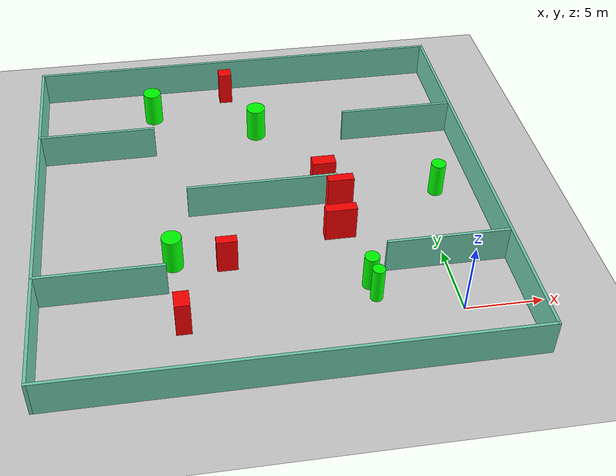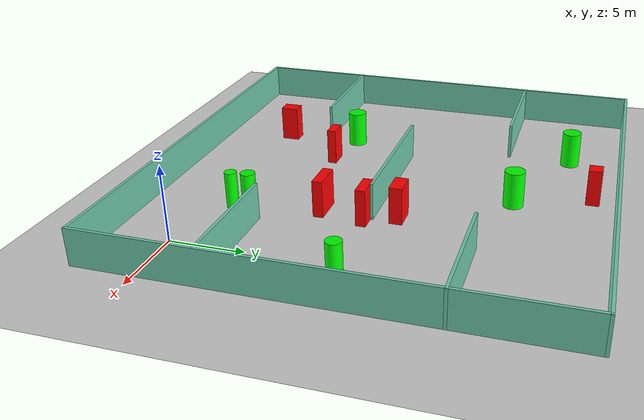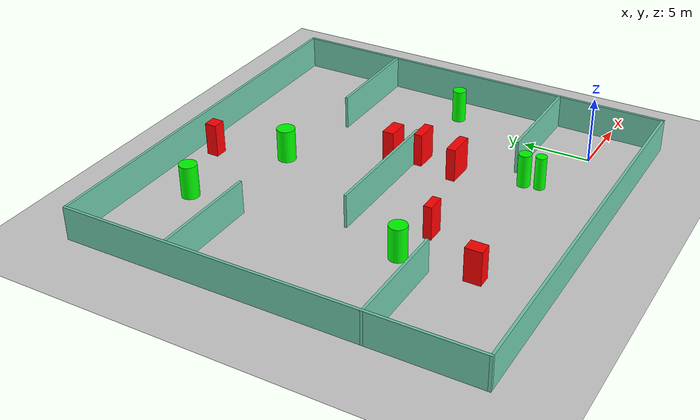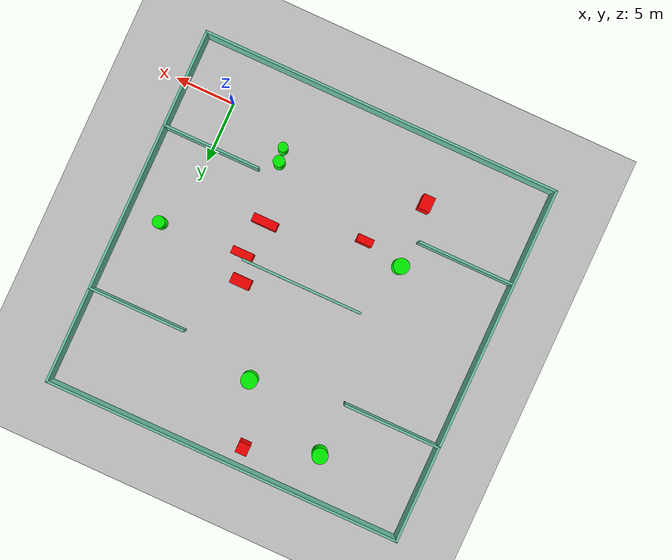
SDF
<sdf version="1.7">
 <world name="default">
  <light name="sun" type="directional">
   <pose>0 0 10 0 -0 0</pose>
   <diffuse>0.8 0.8 0.8 1</diffuse>
   <specular>0.2 0.2 0.2 1</specular>
   <attenuation>
    <range>1000</range>
    <constant>0.9</constant>
    <linear>0.01</linear>
    <quadratic>0.001</quadratic>
   </attenuation>
   <direction>-0.5 0.1 -0.9</direction>
   <spot><inner_angle>0</inner_angle><outer_angle>0</outer_angle><falloff>0</falloff></spot>
  </light>
  <model name="ground_plane">
   <static>1</static>
   <link name="link">
    <collision name="collision">
     <geometry><plane><normal>0 0 1</normal><size>100 100</size></plane></geometry>
     <surface>
      <contact><collide_bitmask>65535</collide_bitmask></contact>
      <friction><ode><mu>100</mu><mu2>50</mu2></ode></friction>
     </surface>
    </collision>
    <visual name="visual">
     <cast_shadows>0</cast_shadows>
     <geometry><plane><normal>0 0 1</normal><size>100 100</size></plane></geometry>
     <material>
      <script><uri>file://media/materials/scripts/gazebo.material</uri><name>Gazebo/Grey</name></script>
     </material>
    </visual>
   </link>
  </model>
  <gravity>0 0 -9.8</gravity>
  <magnetic_field>6e-06 2.3e-05 -4.2e-05</magnetic_field>
  <atmosphere type="adiabatic"/>
  <physics type="ode">
   <max_step_size>0.001</max_step_size>
   <real_time_factor>1</real_time_factor>
   <real_time_update_rate>1000</real_time_update_rate>
  </physics>
  <scene><ambient>0.4 0.4 0.4 1</ambient><background>0.7 0.7 0.7 1</background><shadows>1</shadows></scene>
  <spherical_coordinates>
   <surface_model>EARTH_WGS84</surface_model>
   <latitude_deg>0</latitude_deg>
   <longitude_deg>0</longitude_deg>
   <elevation>0</elevation>
   <heading_deg>0</heading_deg>
  </spherical_coordinates>
  <model name="my_base_walls">
   <link name="Wall_10">
    <collision name="Wall_10_Collision">
     <geometry><box><size>8.2 0.2 2.5</size></box></geometry>
     <pose>0 0 1.25 0 -0 0</pose>
    </collision>
    <visual name="Wall_10_Visual">
     <pose>0 0 1.25 0 -0 0</pose>
     <geometry><box><size>8.2 0.2 2.5</size></box></geometry>
     <material>
      <script><uri>file://media/materials/scripts/gazebo.material</uri><name>Gazebo/Grey</name></script>
      <ambient>0.435294 0.796078 0.67451 1</ambient>
     </material>
     <meta><layer>0</layer></meta>
    </visual>
    <pose>-11 -7 0 0 -0 0</pose>
   </link>
   <link name="Wall_12">
    <collision name="Wall_12_Collision">
     <geometry><box><size>8.2 0.2 2.5</size></box></geometry>
     <pose>0 0 1.25 0 -0 0</pose>
    </collision>
    <visual name="Wall_12_Visual">
     <pose>0 0 1.25 0 -0 0</pose>
     <geometry><box><size>8.2 0.2 2.5</size></box></geometry>
     <material>
      <script><uri>file://media/materials/scripts/gazebo.material</uri><name>Gazebo/Grey</name></script>
      <ambient>0.435294 0.796078 0.67451 1</ambient>
     </material>
     <meta><layer>0</layer></meta>
    </visual>
    <pose>-11 7 0 0 -0 0</pose>
   </link>
   <link name="Wall_14">
    <collision name="Wall_14_Collision">
     <geometry><box><size>8.2 0.2 2.5</size></box></geometry>
     <pose>0 0 1.25 0 -0 0</pose>
    </collision>
    <visual name="Wall_14_Visual">
     <pose>0 0 1.25 0 -0 0</pose>
     <geometry><box><size>8.2 0.2 2.5</size></box></geometry>
     <material>
      <script><uri>file://media/materials/scripts/gazebo.material</uri><name>Gazebo/Grey</name></script>
      <ambient>0.435294 0.796078 0.67451 1</ambient>
     </material>
     <meta><layer>0</layer></meta>
    </visual>
    <pose>11 7 0 0 -0 3.14159</pose>
   </link>
   <link name="Wall_16">
    <collision name="Wall_16_Collision">
     <geometry><box><size>10.2 0.2 2.5</size></box></geometry>
     <pose>0 0 1.25 0 -0 0</pose>
    </collision>
    <visual name="Wall_16_Visual">
     <pose>0 0 1.25 0 -0 0</pose>
     <geometry><box><size>10.2 0.2 2.5</size></box></geometry>
     <material>
      <script><uri>file://media/materials/scripts/gazebo.material</uri><name>Gazebo/Grey</name></script>
      <ambient>0.435294 0.796078 0.67451 1</ambient>
     </material>
     <meta><layer>0</layer></meta>
    </visual>
    <pose>0 0 0 0 -0 3.14159</pose>
   </link>
   <link name="Wall_2">
    <collision name="Wall_2_Collision">
     <geometry><box><size>30.2 0.2 2.5</size></box></geometry>
     <pose>0 0 1.25 0 -0 0</pose>
    </collision>
    <visual name="Wall_2_Visual">
     <pose>0 0 1.25 0 -0 0</pose>
     <geometry><box><size>30.2 0.2 2.5</size></box></geometry>
     <material>
      <script><uri>file://media/materials/scripts/gazebo.material</uri><name>Gazebo/Grey</name></script>
      <ambient>0.435294 0.796078 0.67451 1</ambient>
     </material>
     <meta><layer>0</layer></meta>
    </visual>
    <pose>0 -15 0 0 -0 3.14159</pose>
   </link>
   <link name="Wall_3">
    <collision name="Wall_3_Collision">
     <geometry><box><size>30.2 0.2 2.5</size></box></geometry>
     <pose>0 0 1.25 0 -0 0</pose>
    </collision>
    <visual name="Wall_3_Visual">
     <pose>0 0 1.25 0 -0 0</pose>
     <geometry><box><size>30.2 0.2 2.5</size></box></geometry>
     <material>
      <script><uri>file://media/materials/scripts/gazebo.material</uri><name>Gazebo/Grey</name></script>
      <ambient>0.435294 0.796078 0.67451 1</ambient>
     </material>
     <meta><layer>0</layer></meta>
    </visual>
    <pose>-15 0 0 0 -0 1.5708</pose>
   </link>
   <link name="Wall_4">
    <collision name="Wall_4_Collision">
     <geometry><box><size>30.2 0.2 2.5</size></box></geometry>
     <pose>0 0 1.25 0 -0 0</pose>
    </collision>
    <visual name="Wall_4_Visual">
     <pose>0 0 1.25 0 -0 0</pose>
     <geometry><box><size>30.2 0.2 2.5</size></box></geometry>
     <material>
      <script><uri>file://media/materials/scripts/gazebo.material</uri><name>Gazebo/Grey</name></script>
      <ambient>0.435294 0.796078 0.67451 1</ambient>
     </material>
     <meta><layer>0</layer></meta>
    </visual>
    <pose>0 15 0 0 -0 0</pose>
   </link>
   <link name="Wall_6">
    <collision name="Wall_6_Collision">
     <geometry><box><size>30.2 0.2 2.5</size></box></geometry>
     <pose>0 0 1.25 0 -0 0</pose>
    </collision>
    <visual name="Wall_6_Visual">
     <pose>0 0 1.25 0 -0 0</pose>
     <geometry><box><size>30.2 0.2 2.5</size></box></geometry>
     <material>
      <script><uri>file://media/materials/scripts/gazebo.material</uri><name>Gazebo/Grey</name></script>
      <ambient>0.435294 0.796078 0.67451 1</ambient>
     </material>
     <meta><layer>0</layer></meta>
    </visual>
    <pose>15 0 0 0 -0 1.5708</pose>
   </link>
   <link name="Wall_8">
    <collision name="Wall_8_Collision">
     <geometry><box><size>8.2 0.2 2.5</size></box></geometry>
     <pose>0 0 1.25 0 -0 0</pose>
    </collision>
    <visual name="Wall_8_Visual">
     <pose>0 0 1.25 0 -0 0</pose>
     <geometry><box><size>8.2 0.2 2.5</size></box></geometry>
     <material>
      <script><uri>file://media/materials/scripts/gazebo.material</uri><name>Gazebo/Grey</name></script>
      <ambient>0.435294 0.796078 0.67451 1</ambient>
     </material>
     <meta><layer>0</layer></meta>
    </visual>
    <pose>11 -7 0 0 -0 3.14159</pose>
   </link>
   <static>1</static>
   <pose>-11 11 0 0 -0 0</pose>
  </model>
  <model name="cylinder1">
   <static>1</static>
   <link name="link">
    <inertial>
     <mass>1</mass>
     <inertia><ixx>0.5</ixx><ixy>0</ixy><ixz>0</ixz><iyy>0.5</iyy><iyz>0</iyz><izz>1</izz></inertia>
    </inertial>
    <collision name="collision">
     <geometry><cylinder><radius>0.5062202185867763</radius><length>2.5</length></cylinder></geometry>
    </collision>
    <visual name="visual">
     <geometry><cylinder><radius>0.5062202185867763</radius><length>2.5</length></cylinder></geometry>
     <material>
      <ambient>0 1 0 1</ambient>
      <diffuse>0 1 0 1</diffuse>
      <specular>0.1 0.1 0.1 1</specular>
      <emissive>0 0 0 0</emissive>
     </material>
    </visual>
   </link>
   <pose>1.23482836327387 11.069621319199516 1.25 0 0 0</pose>
  </model>
  <model name="cylinder2">
   <static>1</static>
   <link name="link">
    <inertial>
     <mass>1</mass>
     <inertia><ixx>0.5</ixx><ixy>0</ixy><ixz>0</ixz><iyy>0.5</iyy><iyz>0</iyz><izz>1</izz></inertia>
    </inertial>
    <collision name="collision">
     <geometry><cylinder><radius>0.47885330656242897</radius><length>2.5</length></cylinder></geometry>
    </collision>
    <visual name="visual">
     <geometry><cylinder><radius>0.47885330656242897</radius><length>2.5</length></cylinder></geometry>
     <material>
      <ambient>0 1 0 1</ambient>
      <diffuse>0 1 0 1</diffuse>
      <specular>0.1 0.1 0.1 1</specular>
      <emissive>0 0 0 0</emissive>
     </material>
    </visual>
   </link>
   <pose>-5.331397697729777 2.8512396206025903 1.25 0 0 0</pose>
  </model>
  <model name="cylinder3">
   <static>1</static>
   <link name="link">
    <inertial>
     <mass>1</mass>
     <inertia><ixx>0.5</ixx><ixy>0</ixy><ixz>0</ixz><iyy>0.5</iyy><iyz>0</iyz><izz>1</izz></inertia>
    </inertial>
    <collision name="collision">
     <geometry><cylinder><radius>0.6784982503702734</radius><length>2.5</length></cylinder></geometry>
    </collision>
    <visual name="visual">
     <geometry><cylinder><radius>0.6784982503702734</radius><length>2.5</length></cylinder></geometry>
     <material>
      <ambient>0 1 0 1</ambient>
      <diffuse>0 1 0 1</diffuse>
      <specular>0.1 0.1 0.1 1</specular>
      <emissive>0 0 0 0</emissive>
     </material>
    </visual>
   </link>
   <pose>-10.335604638298939 19.381803160211778 1.25 0 0 0</pose>
  </model>
  <model name="cylinder4">
   <static>1</static>
   <link name="link">
    <inertial>
     <mass>1</mass>
     <inertia><ixx>0.5</ixx><ixy>0</ixy><ixz>0</ixz><iyy>0.5</iyy><iyz>0</iyz><izz>1</izz></inertia>
    </inertial>
    <collision name="collision">
     <geometry><cylinder><radius>0.4036979906758376</radius><length>2.5</length></cylinder></geometry>
    </collision>
    <visual name="visual">
     <geometry><cylinder><radius>0.4036979906758376</radius><length>2.5</length></cylinder></geometry>
     <material>
      <ambient>0 1 0 1</ambient>
      <diffuse>0 1 0 1</diffuse>
      <specular>0.1 0.1 0.1 1</specular>
      <emissive>0 0 0 0</emissive>
     </material>
    </visual>
   </link>
   <pose>-5.158820628621525 1.7252873766416172 1.25 0 0 0</pose>
  </model>
  <model name="cylinder5">
   <static>1</static>
   <link name="link">
    <inertial>
     <mass>1</mass>
     <inertia><ixx>0.5</ixx><ixy>0</ixy><ixz>0</ixz><iyy>0.5</iyy><iyz>0</iyz><izz>1</izz></inertia>
    </inertial>
    <collision name="collision">
     <geometry><cylinder><radius>0.6495018712958394</radius><length>2.5</length></cylinder></geometry>
    </collision>
    <visual name="visual">
     <geometry><cylinder><radius>0.6495018712958394</radius><length>2.5</length></cylinder></geometry>
     <material>
      <ambient>0 1 0 1</ambient>
      <diffuse>0 1 0 1</diffuse>
      <specular>0.1 0.1 0.1 1</specular>
      <emissive>0 0 0 0</emissive>
     </material>
    </visual>
   </link>
   <pose>-17.441234859952537 6.326366047888969 1.25 0 0 0</pose>
  </model>
  <model name="cylinder6">
   <static>1</static>
   <link name="link">
    <inertial>
     <mass>1</mass>
     <inertia><ixx>0.5</ixx><ixy>0</ixy><ixz>0</ixz><iyy>0.5</iyy><iyz>0</iyz><izz>1</izz></inertia>
    </inertial>
    <collision name="collision">
     <geometry><cylinder><radius>0.6471836362778158</radius><length>2.5</length></cylinder></geometry>
    </collision>
    <visual name="visual">
     <geometry><cylinder><radius>0.6471836362778158</radius><length>2.5</length></cylinder></geometry>
     <material>
      <ambient>0 1 0 1</ambient>
      <diffuse>0 1 0 1</diffuse>
      <specular>0.1 0.1 0.1 1</specular>
      <emissive>0 0 0 0</emissive>
     </material>
    </visual>
   </link>
   <pose>-17.822315278329988 22.436575454259046 1.25 0 0 0</pose>
  </model>
  <model name="box1">
   <static>1</static>
   <link name="link">
    <inertial>
     <mass>1</mass>
     <inertia><ixx>0.083</ixx><ixy>0</ixy><ixz>0</ixz><iyy>0.083</iyy><iyz>0</iyz><izz>0.083</izz></inertia>
    </inertial>
    <collision name="collision">
     <geometry><box><size>1.3379269519489185 0.6093495288762156 2.5</size></box></geometry>
    </collision>
    <visual name="visual">
     <geometry><box><size>1.3379269519489185 0.6093495288762156 2.5</size></box></geometry>
     <material>
      <ambient>1 0 0 1</ambient>
      <diffuse>1 0 0 1</diffuse>
      <specular>0.1 0.1 0.1 1</specular>
      <emissive>0 0 0 0</emissive>
     </material>
    </visual>
    <sensor name="my_contact" type="contact">
     <contact><collision>box_collision</collision><topic>__default_topic__</topic></contact>
    </sensor>
   </link>
   <pose>-14.03062818652245 5.66594789670506 1.25 0 0 0</pose>
  </model>
  <model name="box2">
   <static>1</static>
   <link name="link">
    <inertial>
     <mass>1</mass>
     <inertia><ixx>0.083</ixx><ixy>0</ixy><ixz>0</ixz><iyy>0.083</iyy><iyz>0</iyz><izz>0.083</izz></inertia>
    </inertial>
    <collision name="collision">
     <geometry><box><size>2.083204257702759 0.6818763654294561 2.5</size></box></geometry>
    </collision>
    <visual name="visual">
     <geometry><box><size>2.083204257702759 0.6818763654294561 2.5</size></box></geometry>
     <material>
      <ambient>1 0 0 1</ambient>
      <diffuse>1 0 0 1</diffuse>
      <specular>0.1 0.1 0.1 1</specular>
      <emissive>0 0 0 0</emissive>
     </material>
    </visual>
    <sensor name="my_contact" type="contact">
     <contact><collision>box_collision</collision><topic>__default_topic__</topic></contact>
    </sensor>
   </link>
   <pose>-6.3054340297560785 7.615206192286093 1.25 0 0 0</pose>
  </model>
  <model name="box3">
   <static>1</static>
   <link name="link">
    <inertial>
     <mass>1</mass>
     <inertia><ixx>0.083</ixx><ixy>0</ixy><ixz>0</ixz><iyy>0.083</iyy><iyz>0</iyz><izz>0.083</izz></inertia>
    </inertial>
    <collision name="collision">
     <geometry><box><size>1.7688537032885927 0.6590691174379095 2.5</size></box></geometry>
    </collision>
    <visual name="visual">
     <geometry><box><size>1.7688537032885927 0.6590691174379095 2.5</size></box></geometry>
     <material>
      <ambient>1 0 0 1</ambient>
      <diffuse>1 0 0 1</diffuse>
      <specular>0.1 0.1 0.1 1</specular>
      <emissive>0 0 0 0</emissive>
     </material>
    </visual>
    <sensor name="my_contact" type="contact">
     <contact><collision>box_collision</collision><topic>__default_topic__</topic></contact>
    </sensor>
   </link>
   <pose>-5.729025070947955 10.60310573812193 1.25 0 0 0</pose>
  </model>
  <model name="box4">
   <static>1</static>
   <link name="link">
    <inertial>
     <mass>1</mass>
     <inertia><ixx>0.083</ixx><ixy>0</ixy><ixz>0</ixz><iyy>0.083</iyy><iyz>0</iyz><izz>0.083</izz></inertia>
    </inertial>
    <collision name="collision">
     <geometry><box><size>0.9638608686420946 1.2325427137475915 2.5</size></box></geometry>
    </collision>
    <visual name="visual">
     <geometry><box><size>0.9638608686420946 1.2325427137475915 2.5</size></box></geometry>
     <material>
      <ambient>1 0 0 1</ambient>
      <diffuse>1 0 0 1</diffuse>
      <specular>0.1 0.1 0.1 1</specular>
      <emissive>0 0 0 0</emissive>
     </material>
    </visual>
    <sensor name="my_contact" type="contact">
     <contact><collision>box_collision</collision><topic>__default_topic__</topic></contact>
    </sensor>
   </link>
   <pose>-17.19990007047986 1.0220828586345956 1.25 0 0 0</pose>
  </model>
  <model name="box5">
   <static>1</static>
   <link name="link">
    <inertial>
     <mass>1</mass>
     <inertia><ixx>0.083</ixx><ixy>0</ixy><ixz>0</ixz><iyy>0.083</iyy><iyz>0</iyz><izz>0.083</izz></inertia>
    </inertial>
    <collision name="collision">
     <geometry><box><size>1.618391922045541 0.8659798989192267 2.5</size></box></geometry>
    </collision>
    <visual name="visual">
     <geometry><box><size>1.618391922045541 0.8659798989192267 2.5</size></box></geometry>
     <material>
      <ambient>1 0 0 1</ambient>
      <diffuse>1 0 0 1</diffuse>
      <specular>0.1 0.1 0.1 1</specular>
      <emissive>0 0 0 0</emissive>
     </material>
    </visual>
    <sensor name="my_contact" type="contact">
     <contact><collision>box_collision</collision><topic>__default_topic__</topic></contact>
    </sensor>
   </link>
   <pose>-6.522987035699543 12.620425572334087 1.25 0 0 0</pose>
  </model>
  <model name="box6">
   <static>1</static>
   <link name="link">
    <inertial>
     <mass>1</mass>
     <inertia><ixx>0.083</ixx><ixy>0</ixy><ixz>0</ixz><iyy>0.083</iyy><iyz>0</iyz><izz>0.083</izz></inertia>
    </inertial>
    <collision name="collision">
     <geometry><box><size>0.9543212970301204 0.9065808214455825 2.5</size></box></geometry>
    </collision>
    <visual name="visual">
     <geometry><box><size>0.9543212970301204 0.9065808214455825 2.5</size></box></geometry>
     <material>
      <ambient>1 0 0 1</ambient>
      <diffuse>1 0 0 1</diffuse>
      <specular>0.1 0.1 0.1 1</specular>
      <emissive>0 0 0 0</emissive>
     </material>
    </visual>
    <sensor name="my_contact" type="contact">
     <contact><collision>box_collision</collision><topic>__default_topic__</topic></contact>
    </sensor>
   </link>
   <pose>-12.109088997972624 24.42006372413622 1.25 0 0 0</pose>
  </model>
 </world>
</sdf>
